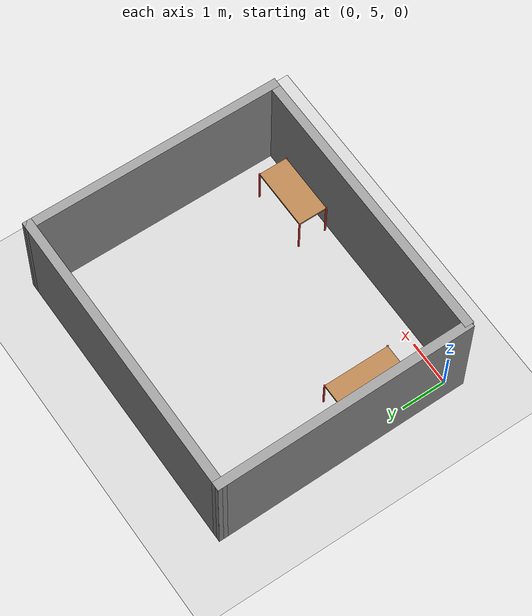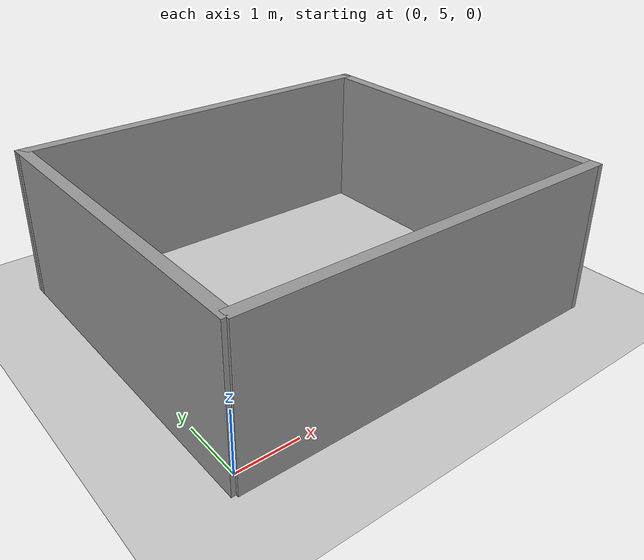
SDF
<sdf version="1.4">
 <world name="single_room_world">
  <light name="sun_test" type="directional">
   <pose>0 0 10 0.2 0.8 10</pose>
   <diffuse>0.8 0.8 0.8 1</diffuse>
   <specular>0.2 0.2 0.2 1</specular>
   <attenuation>
    <range>1000</range>
    <constant>0.9</constant>
    <linear>0.01</linear>
    <quadratic>0.001</quadratic>
   </attenuation>
   <direction>-0.05 -0.0 -0.7</direction>
  </light>
  <model name="ground_plane">
   <static>1</static>
   <link name="link">
    <collision name="collision">
     <geometry><plane><normal>0 0 1</normal><size>100 100</size></plane></geometry>
     <surface><friction><ode><mu>100</mu><mu2>50</mu2></ode></friction></surface>
    </collision>
    <visual name="visual">
     <cast_shadows>0</cast_shadows>
     <geometry><plane><normal>0 0 1</normal><size>100 100</size></plane></geometry>
     <material>
      <script><uri>file://media/materials/scripts/gazebo.material</uri><name>Gazebo/Grey</name></script>
     </material>
    </visual>
    <velocity_decay><linear>0</linear><angular>0</angular></velocity_decay>
   </link>
  </model>
  <physics type="ode">
   <max_step_size>0.001</max_step_size>
   <real_time_factor>1</real_time_factor>
   <real_time_update_rate>1000</real_time_update_rate>
   <gravity>0 0 -9.8</gravity>
  </physics>
  <scene><ambient>0.4 0.4 0.4 1</ambient><background>0.7 0.7 0.7 1</background><shadows>1</shadows></scene>
  <model name="map">
   <link name="Wall_14">
    <collision name="Wall_14_Collision">
     <geometry><box><size>5.79758 0.2 2.5</size></box></geometry>
     <pose>0 0 1.25 0 -0 0</pose>
    </collision>
    <visual name="Wall_14_Visual">
     <pose>0 0 1.25 0 -0 0</pose>
     <geometry><box><size>5.79758 0.2 2.5</size></box></geometry>
     <material>
      <script><uri>file://media/materials/scripts/gazebo.material</uri><name>Gazebo/Grey</name></script>
     </material>
    </visual>
    <velocity_decay><linear>0</linear><angular>0</angular></velocity_decay>
    <pose>-0.152811 7.60684 0 0 -0 1.57912</pose>
   </link>
   <link name="Wall_15">
    <collision name="Wall_15_Collision">
     <geometry><box><size>6.66901 0.2 2.5</size></box></geometry>
     <pose>0 0 1.25 0 -0 0</pose>
    </collision>
    <visual name="Wall_15_Visual">
     <pose>0 0 1.25 0 -0 0</pose>
     <geometry><box><size>6.66901 0.2 2.5</size></box></geometry>
     <material>
      <script><uri>file://media/materials/scripts/gazebo.material</uri><name>Gazebo/Grey</name></script>
     </material>
    </visual>
    <velocity_decay><linear>0</linear><angular>0</angular></velocity_decay>
    <pose>3.05839 10.4055 0 0 -0 0</pose>
   </link>
   <link name="Wall_16">
    <collision name="Wall_16_Collision">
     <geometry><box><size>5.83879 0.2 2.5</size></box></geometry>
     <pose>0 0 1.25 0 -0 0</pose>
    </collision>
    <visual name="Wall_16_Visual">
     <pose>0 0 1.25 0 -0 0</pose>
     <geometry><box><size>5.83879 0.2 2.5</size></box></geometry>
     <material>
      <script><uri>file://media/materials/scripts/gazebo.material</uri><name>Gazebo/Grey</name></script>
     </material>
    </visual>
    <velocity_decay><linear>0</linear><angular>0</angular></velocity_decay>
    <pose>6.28355 7.58615 0 0 0 -1.57411</pose>
   </link>
   <link name="Wall_17">
    <collision name="Wall_17_Collision">
     <geometry><box><size>6.53169 0.2 2.5</size></box></geometry>
     <pose>0 0 1.25 0 -0 0</pose>
    </collision>
    <visual name="Wall_17_Visual">
     <pose>0 0 1.25 0 -0 0</pose>
     <geometry><box><size>6.53169 0.2 2.5</size></box></geometry>
     <material>
      <script><uri>file://media/materials/scripts/gazebo.material</uri><name>Gazebo/Grey</name></script>
     </material>
    </visual>
    <velocity_decay><linear>0</linear><angular>0</angular></velocity_decay>
    <pose>3.10835 4.76678 0 0 -0 3.14159</pose>
   </link>
   <static>1</static>
  </model>
  <model name="table1">
   <link name="table_top_link">
    <inertial>
     <pose>0 0 0.535 0 -0 0</pose>
     <mass>5</mass>
     <inertia><ixx>1.967</ixx><ixy>0</ixy><ixz>0</ixz><iyy>3.5045</iyy><iyz>0</iyz><izz>3.4225</izz></inertia>
    </inertial>
    <collision name="table_top_link_collision">
     <pose>0 0 0.875 0 -0 0</pose>
     <geometry><box><size>1.4 0.65 0.05</size></box></geometry>
     <surface>
      <contact><ode><kp>1e+06</kp><kd>1</kd></ode></contact>
      <friction><ode><mu>50</mu><mu2>50</mu2></ode></friction>
     </surface>
    </collision>
    <collision name="table_top_link_collision_leg1_link">
     <pose>0.7 0.325 0.45 0 -0 0</pose>
     <geometry><cylinder><length>0.9</length><radius>0.02</radius></cylinder></geometry>
     <surface>
      <contact><ode><kp>1e+06</kp><kd>1</kd></ode></contact>
      <friction><ode><mu>50</mu><mu2>50</mu2></ode></friction>
     </surface>
     <surface>
      <contact><ode><kp>1e+07</kp><kd>1</kd></ode></contact>
      <friction><ode><mu>1000</mu><mu2>1000</mu2></ode></friction>
     </surface>
    </collision>
    <collision name="table_top_link_collision_leg2_link">
     <pose>-0.7 0.325 0.45 0 -0 0</pose>
     <geometry><cylinder><length>0.9</length><radius>0.02</radius></cylinder></geometry>
     <surface>
      <contact><ode><kp>1e+06</kp><kd>1</kd></ode></contact>
      <friction><ode><mu>50</mu><mu2>50</mu2></ode></friction>
     </surface>
     <surface>
      <contact><ode><kp>1e+07</kp><kd>1</kd></ode></contact>
      <friction><ode><mu>1000</mu><mu2>1000</mu2></ode></friction>
     </surface>
    </collision>
    <collision name="table_top_link_collision_leg3_link">
     <pose>0.7 -0.325 0.45 0 -0 0</pose>
     <geometry><cylinder><length>0.9</length><radius>0.02</radius></cylinder></geometry>
     <surface>
      <contact><ode><kp>1e+06</kp><kd>1</kd></ode></contact>
      <friction><ode><mu>50</mu><mu2>50</mu2></ode></friction>
     </surface>
     <surface>
      <contact><ode><kp>1e+07</kp><kd>1</kd></ode></contact>
      <friction><ode><mu>1000</mu><mu2>1000</mu2></ode></friction>
     </surface>
    </collision>
    <collision name="table_top_link_collision_leg4_link">
     <pose>-0.7 -0.325 0.45 0 -0 0</pose>
     <geometry><cylinder><length>0.9</length><radius>0.02</radius></cylinder></geometry>
     <surface>
      <contact><ode><kp>1e+06</kp><kd>1</kd></ode></contact>
      <friction><ode><mu>50</mu><mu2>50</mu2></ode></friction>
     </surface>
     <surface>
      <contact><ode><kp>1e+07</kp><kd>1</kd></ode></contact>
      <friction><ode><mu>1000</mu><mu2>1000</mu2></ode></friction>
     </surface>
    </collision>
    <visual name="table_top_link_visual">
     <pose>0 0 0.875 0 -0 0</pose>
     <geometry><box><size>1.4 0.65 0.05</size></box></geometry>
     <material><script><name>Gazebo/Wood</name><uri>__default__</uri></script></material>
    </visual>
    <visual name="table_top_link_visual_leg1_link">
     <pose>0.7 0.325 0.45 0 -0 0</pose>
     <geometry><cylinder><length>0.9</length><radius>0.02</radius></cylinder></geometry>
     <material><script><name>Gazebo/Red</name><uri>__default__</uri></script></material>
    </visual>
    <visual name="table_top_link_visual_leg2_link">
     <pose>-0.7 0.325 0.45 0 -0 0</pose>
     <geometry><cylinder><length>0.9</length><radius>0.02</radius></cylinder></geometry>
     <material><script><name>Gazebo/Red</name><uri>__default__</uri></script></material>
    </visual>
    <visual name="table_top_link_visual_leg3_link">
     <pose>0.7 -0.325 0.45 0 -0 0</pose>
     <geometry><cylinder><length>0.9</length><radius>0.02</radius></cylinder></geometry>
     <material><script><name>Gazebo/Red</name><uri>__default__</uri></script></material>
    </visual>
    <visual name="table_top_link_visual_leg4_link">
     <pose>-0.7 -0.325 0.45 0 -0 0</pose>
     <geometry><cylinder><length>0.9</length><radius>0.02</radius></cylinder></geometry>
     <material><script><name>Gazebo/Red</name><uri>__default__</uri></script></material>
    </visual>
    <velocity_decay><linear>0</linear><angular>0</angular></velocity_decay>
    <velocity_decay><linear>0</linear><angular>0</angular></velocity_decay>
    <velocity_decay><linear>0</linear><angular>0</angular></velocity_decay>
    <velocity_decay><linear>0</linear><angular>0</angular></velocity_decay>
    <velocity_decay><linear>0</linear><angular>0</angular></velocity_decay>
    <self_collide>1</self_collide>
   </link>
   <static>1</static>
   <pose>4.81 5.28 0 0 -0 0</pose>
  </model>
  <model name="table2">
   <link name="table_top_link">
    <inertial>
     <pose>0 0 0.433 0 -0 0</pose>
     <mass>5</mass>
     <inertia><ixx>3.74248</ixx><ixy>0</ixy><ixz>0</ixz><iyy>2.49248</iyy><iyz>0</iyz><izz>4.29</izz></inertia>
    </inertial>
    <collision name="table_top_link_collision">
     <pose>0 0 0.705 0 -0 0</pose>
     <geometry><box><size>1 1.5 0.05</size></box></geometry>
     <surface>
      <contact><ode><kp>1e+06</kp><kd>1</kd></ode></contact>
      <friction><ode><mu>50</mu><mu2>50</mu2></ode></friction>
     </surface>
    </collision>
    <collision name="table_top_link_collision_leg1_link">
     <pose>0.5 0.75 0.365 0 -0 0</pose>
     <geometry><cylinder><length>0.73</length><radius>0.02</radius></cylinder></geometry>
     <surface>
      <contact><ode><kp>1e+06</kp><kd>1</kd></ode></contact>
      <friction><ode><mu>50</mu><mu2>50</mu2></ode></friction>
     </surface>
     <surface>
      <contact><ode><kp>1e+07</kp><kd>1</kd></ode></contact>
      <friction><ode><mu>1000</mu><mu2>1000</mu2></ode></friction>
     </surface>
    </collision>
    <collision name="table_top_link_collision_leg2_link">
     <pose>-0.5 0.75 0.365 0 -0 0</pose>
     <geometry><cylinder><length>0.73</length><radius>0.02</radius></cylinder></geometry>
     <surface>
      <contact><ode><kp>1e+06</kp><kd>1</kd></ode></contact>
      <friction><ode><mu>50</mu><mu2>50</mu2></ode></friction>
     </surface>
     <surface>
      <contact><ode><kp>1e+07</kp><kd>1</kd></ode></contact>
      <friction><ode><mu>1000</mu><mu2>1000</mu2></ode></friction>
     </surface>
    </collision>
    <collision name="table_top_link_collision_leg3_link">
     <pose>0.5 -0.75 0.365 0 -0 0</pose>
     <geometry><cylinder><length>0.73</length><radius>0.02</radius></cylinder></geometry>
     <surface>
      <contact><ode><kp>1e+06</kp><kd>1</kd></ode></contact>
      <friction><ode><mu>50</mu><mu2>50</mu2></ode></friction>
     </surface>
     <surface>
      <contact><ode><kp>1e+07</kp><kd>1</kd></ode></contact>
      <friction><ode><mu>1000</mu><mu2>1000</mu2></ode></friction>
     </surface>
    </collision>
    <collision name="table_top_link_collision_leg4_link">
     <pose>-0.5 -0.75 0.365 0 -0 0</pose>
     <geometry><cylinder><length>0.73</length><radius>0.02</radius></cylinder></geometry>
     <surface>
      <contact><ode><kp>1e+06</kp><kd>1</kd></ode></contact>
      <friction><ode><mu>50</mu><mu2>50</mu2></ode></friction>
     </surface>
     <surface>
      <contact><ode><kp>1e+07</kp><kd>1</kd></ode></contact>
      <friction><ode><mu>1000</mu><mu2>1000</mu2></ode></friction>
     </surface>
    </collision>
    <visual name="table_top_link_visual">
     <pose>0 0 0.705 0 -0 0</pose>
     <geometry><box><size>1 1.5 0.05</size></box></geometry>
     <material><script><name>Gazebo/Wood</name><uri>__default__</uri></script></material>
    </visual>
    <visual name="table_top_link_visual_leg1_link">
     <pose>0.5 0.75 0.365 0 -0 0</pose>
     <geometry><cylinder><length>0.73</length><radius>0.02</radius></cylinder></geometry>
     <material><script><name>Gazebo/Red</name><uri>__default__</uri></script></material>
    </visual>
    <visual name="table_top_link_visual_leg2_link">
     <pose>-0.5 0.75 0.365 0 -0 0</pose>
     <geometry><cylinder><length>0.73</length><radius>0.02</radius></cylinder></geometry>
     <material><script><name>Gazebo/Red</name><uri>__default__</uri></script></material>
    </visual>
    <visual name="table_top_link_visual_leg3_link">
     <pose>0.5 -0.75 0.365 0 -0 0</pose>
     <geometry><cylinder><length>0.73</length><radius>0.02</radius></cylinder></geometry>
     <material><script><name>Gazebo/Red</name><uri>__default__</uri></script></material>
    </visual>
    <visual name="table_top_link_visual_leg4_link">
     <pose>-0.5 -0.75 0.365 0 -0 0</pose>
     <geometry><cylinder><length>0.73</length><radius>0.02</radius></cylinder></geometry>
     <material><script><name>Gazebo/Red</name><uri>__default__</uri></script></material>
    </visual>
    <velocity_decay><linear>0</linear><angular>0</angular></velocity_decay>
    <velocity_decay><linear>0</linear><angular>0</angular></velocity_decay>
    <velocity_decay><linear>0</linear><angular>0</angular></velocity_decay>
    <velocity_decay><linear>0</linear><angular>0</angular></velocity_decay>
    <velocity_decay><linear>0</linear><angular>0</angular></velocity_decay>
    <self_collide>1</self_collide>
   </link>
   <static>1</static>
   <pose>0.5 6.44 0 0 -0 0</pose>
  </model>
 </world>
</sdf>
